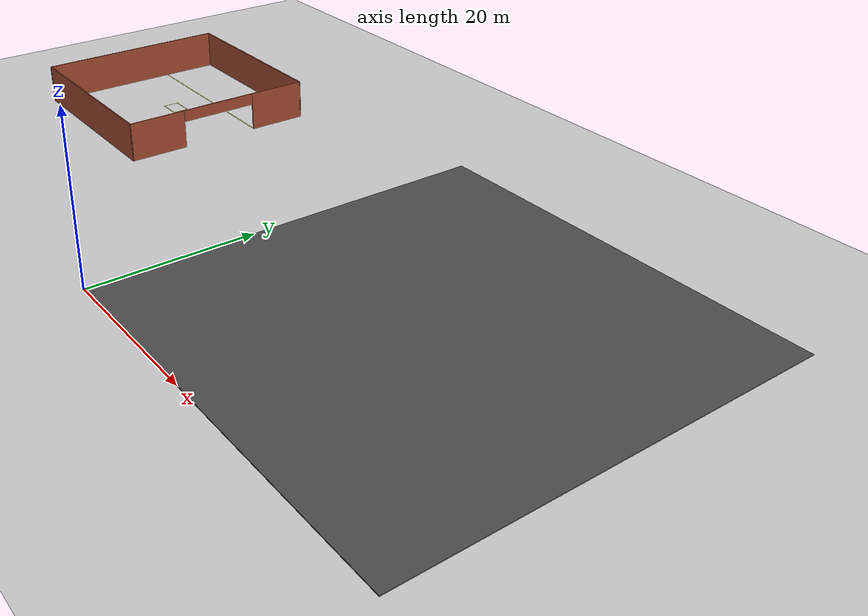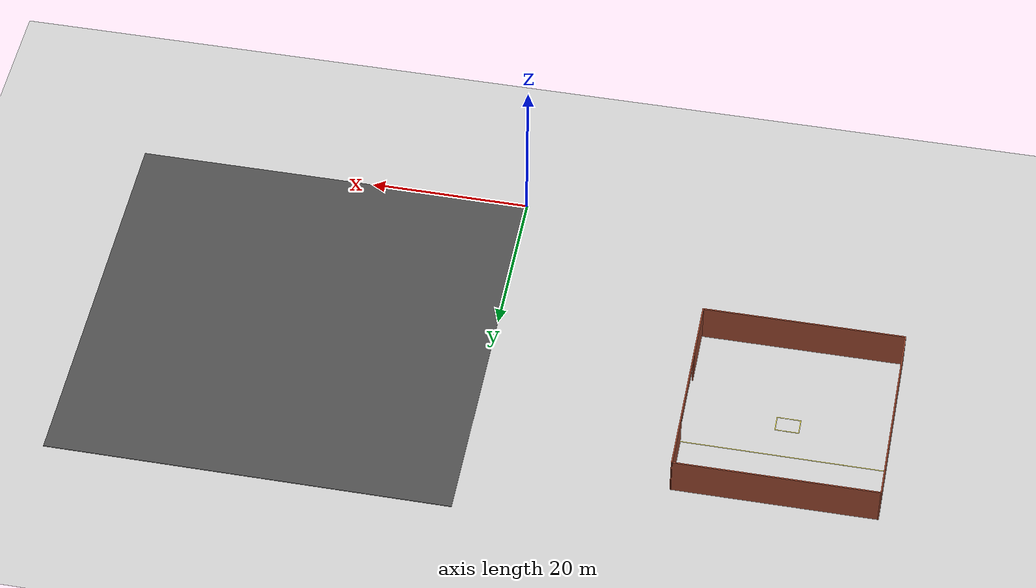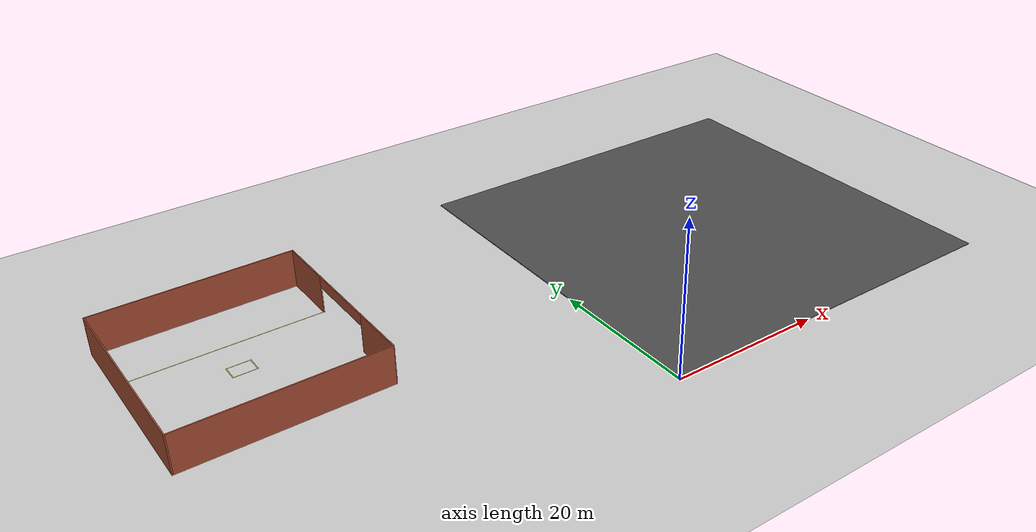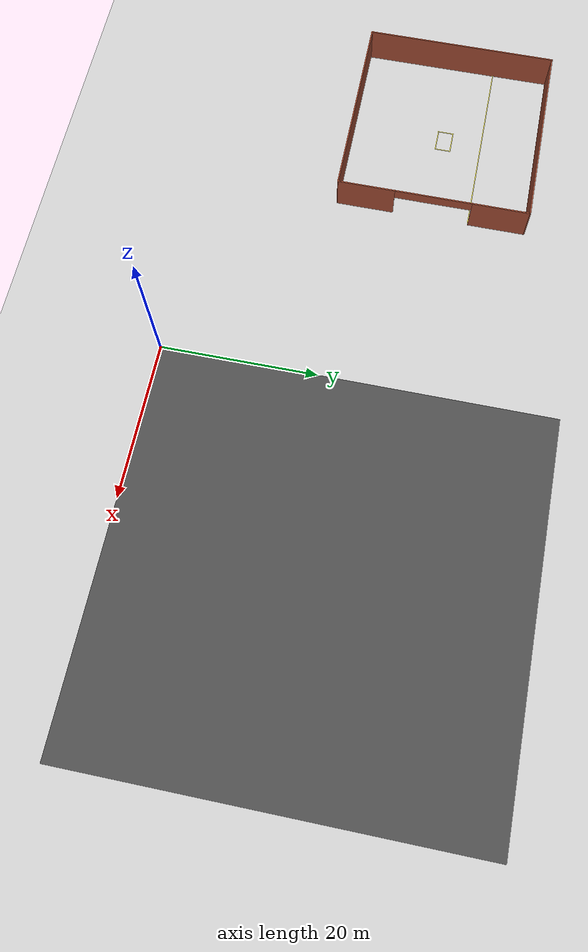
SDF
<sdf version="1.7">
 <world name="default">
  <model name="ground_plane">
   <static>1</static>
   <link name="link">
    <collision name="collision">
     <geometry><plane><normal>0 0 1</normal><size>100 100</size></plane></geometry>
     <surface>
      <contact><collide_bitmask>65535</collide_bitmask></contact>
      <friction><ode><mu>100</mu><mu2>50</mu2></ode></friction>
     </surface>
    </collision>
    <visual name="visual">
     <cast_shadows>0</cast_shadows>
     <geometry><plane><normal>0 0 1</normal><size>100 100</size></plane></geometry>
     <material>
      <script><uri>file://media/materials/scripts/gazebo.material</uri><name>Gazebo/Grey</name></script>
     </material>
    </visual>
   </link>
  </model>
  <model name="asphalt_plane">
   <link name="link">
    <inertial>
     <mass>1</mass>
     <inertia><ixx>1</ixx><ixy>0</ixy><ixz>0</ixz><iyy>1</iyy><iyz>0</iyz><izz>1</izz></inertia>
    </inertial>
    <visual name="visual">
     <cast_shadows>0</cast_shadows>
     <geometry><box><size>50 50 0.1</size></box></geometry>
     <material>
      <script>
       <uri>model://asphalt_plane/materials/scripts</uri>
       <uri>model://asphalt_plane/materials/textures</uri>
       <name>vrc/asphalt</name>
      </script>
      <shader type="pixel"><normal_map>__default__</normal_map></shader>
      <ambient>0.5 0.5 0.5 1</ambient>
      <diffuse>0.5 0.5 0.5 1</diffuse>
      <specular>0.2 0.2 0.2 1</specular>
      <emissive>0 0 0 1</emissive>
     </material>
    </visual>
    <collision name="collision">
     <geometry><box><size>50 50 0.1</size></box></geometry>
     <surface>
      <friction>
       <ode><mu>1</mu><mu2>1</mu2><fdir1>0 0 0</fdir1><slip1>0</slip1><slip2>0</slip2></ode>
       <torsional>
        <coefficient>1</coefficient>
        <patch_radius>0</patch_radius>
        <surface_radius>0</surface_radius>
        <use_patch_radius>1</use_patch_radius>
        <ode><slip>0</slip></ode>
       </torsional>
      </friction>
      <bounce><restitution_coefficient>0</restitution_coefficient><threshold>1e+06</threshold></bounce>
      <contact>
       <collide_without_contact>0</collide_without_contact>
       <collide_without_contact_bitmask>1</collide_without_contact_bitmask>
       <collide_bitmask>1</collide_bitmask>
       <ode>
        <soft_cfm>0</soft_cfm>
        <soft_erp>0.2</soft_erp>
        <kp>1e+13</kp>
        <kd>1</kd>
        <max_vel>0.01</max_vel>
        <min_depth>0</min_depth>
       </ode>
       <bullet>
        <split_impulse>1</split_impulse>
        <split_impulse_penetration_threshold>-0.01</split_impulse_penetration_threshold>
        <soft_cfm>0</soft_cfm>
        <soft_erp>0.2</soft_erp>
        <kp>1e+13</kp>
        <kd>1</kd>
       </bullet>
      </contact>
     </surface>
    </collision>
   </link>
   <static>1</static>
   <pose>25 25 0 0 -0 0</pose>
  </model>
  <model name="galpao_0">
   <link name="Wall_1">
    <pose>0 12.4246 0 0 -0 0.002696</pose>
    <visual name="Wall_1_Visual">
     <pose>0 0 2.5 0 -0 0</pose>
     <geometry><box><size>25 0.15 5</size></box></geometry>
     <material>
      <script><uri>file://media/materials/scripts/gazebo.material</uri><name>Gazebo/Bricks</name></script>
      <ambient>1 1 1 1</ambient>
      <shader type="pixel"/>
     </material>
     <meta><layer>0</layer></meta>
    </visual>
    <collision name="Wall_1_Collision">
     <pose>0 0 2.5 0 -0 0</pose>
     <geometry><box><size>25 0.15 5</size></box></geometry>
     <surface>
      <friction>
       <ode><mu>1</mu><mu2>1</mu2><fdir1>0 0 0</fdir1><slip1>0</slip1><slip2>0</slip2></ode>
       <torsional>
        <coefficient>1</coefficient>
        <patch_radius>0</patch_radius>
        <surface_radius>0</surface_radius>
        <use_patch_radius>1</use_patch_radius>
        <ode><slip>0</slip></ode>
       </torsional>
      </friction>
      <bounce><restitution_coefficient>0</restitution_coefficient><threshold>1e+06</threshold></bounce>
      <contact>
       <collide_without_contact>0</collide_without_contact>
       <collide_without_contact_bitmask>1</collide_without_contact_bitmask>
       <collide_bitmask>1</collide_bitmask>
       <ode>
        <soft_cfm>0</soft_cfm>
        <soft_erp>0.2</soft_erp>
        <kp>1e+13</kp>
        <kd>1</kd>
        <max_vel>0.01</max_vel>
        <min_depth>0</min_depth>
       </ode>
       <bullet>
        <split_impulse>1</split_impulse>
        <split_impulse_penetration_threshold>-0.01</split_impulse_penetration_threshold>
        <soft_cfm>0</soft_cfm>
        <soft_erp>0.2</soft_erp>
        <kp>1e+13</kp>
        <kd>1</kd>
       </bullet>
      </contact>
     </surface>
    </collision>
   </link>
   <link name="Wall_2">
    <pose>12.425 0.033073 0 0 0 -1.5708</pose>
    <inertial>
     <mass>1</mass>
     <inertia><ixx>1</ixx><ixy>0</ixy><ixz>0</ixz><iyy>1</iyy><iyz>0</iyz><izz>1</izz></inertia>
    </inertial>
    <visual name="Wall_2_Visual_0">
     <pose>-8.75 0 2.5 0 -0 0</pose>
     <geometry><box><size>7.5 0.15 5</size></box></geometry>
     <material>
      <script><uri>file://media/materials/scripts/gazebo.material</uri><name>Gazebo/Bricks</name></script>
      <ambient>1 1 1 1</ambient>
      <shader type="pixel"><normal_map>__default__</normal_map></shader>
      <diffuse>1 1 1 1</diffuse>
      <specular>0.2 0.2 0.2 1</specular>
      <emissive>0 0 0 1</emissive>
     </material>
     <meta><layer>0</layer></meta>
    </visual>
    <visual name="Wall_2_Visual_1">
     <pose>8.75 0 2.5 0 -0 0</pose>
     <geometry><box><size>7.5 0.15 5</size></box></geometry>
     <material>
      <script><uri>file://media/materials/scripts/gazebo.material</uri><name>Gazebo/Bricks</name></script>
      <ambient>1 1 1 1</ambient>
      <shader type="pixel"><normal_map>__default__</normal_map></shader>
      <diffuse>1 1 1 1</diffuse>
      <specular>0.2 0.2 0.2 1</specular>
      <emissive>0 0 0 1</emissive>
     </material>
     <meta><layer>0</layer></meta>
    </visual>
    <visual name="Wall_2_Visual_2">
     <pose>0 0 4.25 0 -0 0</pose>
     <geometry><box><size>10 0.15 1.5</size></box></geometry>
     <material>
      <script><uri>file://media/materials/scripts/gazebo.material</uri><name>Gazebo/Bricks</name></script>
      <ambient>1 1 1 1</ambient>
      <shader type="pixel"><normal_map>__default__</normal_map></shader>
      <diffuse>1 1 1 1</diffuse>
      <specular>0.2 0.2 0.2 1</specular>
      <emissive>0 0 0 1</emissive>
     </material>
     <meta><layer>0</layer></meta>
    </visual>
    <collision name="Wall_2_Collision_0">
     <pose>-8.75 0 2.5 0 -0 0</pose>
     <geometry><box><size>7.5 0.15 5</size></box></geometry>
     <surface>
      <friction>
       <ode><mu>1</mu><mu2>1</mu2><fdir1>0 0 0</fdir1><slip1>0</slip1><slip2>0</slip2></ode>
       <torsional>
        <coefficient>1</coefficient>
        <patch_radius>0</patch_radius>
        <surface_radius>0</surface_radius>
        <use_patch_radius>1</use_patch_radius>
        <ode><slip>0</slip></ode>
       </torsional>
      </friction>
      <bounce><restitution_coefficient>0</restitution_coefficient><threshold>1e+06</threshold></bounce>
      <contact>
       <collide_without_contact>0</collide_without_contact>
       <collide_without_contact_bitmask>1</collide_without_contact_bitmask>
       <collide_bitmask>1</collide_bitmask>
       <ode>
        <soft_cfm>0</soft_cfm>
        <soft_erp>0.2</soft_erp>
        <kp>1e+13</kp>
        <kd>1</kd>
        <max_vel>0.01</max_vel>
        <min_depth>0</min_depth>
       </ode>
       <bullet>
        <split_impulse>1</split_impulse>
        <split_impulse_penetration_threshold>-0.01</split_impulse_penetration_threshold>
        <soft_cfm>0</soft_cfm>
        <soft_erp>0.2</soft_erp>
        <kp>1e+13</kp>
        <kd>1</kd>
       </bullet>
      </contact>
     </surface>
    </collision>
    <collision name="Wall_2_Collision_1">
     <pose>8.75 0 2.5 0 -0 0</pose>
     <geometry><box><size>7.5 0.15 5</size></box></geometry>
     <surface>
      <friction>
       <ode><mu>1</mu><mu2>1</mu2><fdir1>0 0 0</fdir1><slip1>0</slip1><slip2>0</slip2></ode>
       <torsional>
        <coefficient>1</coefficient>
        <patch_radius>0</patch_radius>
        <surface_radius>0</surface_radius>
        <use_patch_radius>1</use_patch_radius>
        <ode><slip>0</slip></ode>
       </torsional>
      </friction>
      <bounce><restitution_coefficient>0</restitution_coefficient><threshold>1e+06</threshold></bounce>
      <contact>
       <collide_without_contact>0</collide_without_contact>
       <collide_without_contact_bitmask>1</collide_without_contact_bitmask>
       <collide_bitmask>1</collide_bitmask>
       <ode>
        <soft_cfm>0</soft_cfm>
        <soft_erp>0.2</soft_erp>
        <kp>1e+13</kp>
        <kd>1</kd>
        <max_vel>0.01</max_vel>
        <min_depth>0</min_depth>
       </ode>
       <bullet>
        <split_impulse>1</split_impulse>
        <split_impulse_penetration_threshold>-0.01</split_impulse_penetration_threshold>
        <soft_cfm>0</soft_cfm>
        <soft_erp>0.2</soft_erp>
        <kp>1e+13</kp>
        <kd>1</kd>
       </bullet>
      </contact>
     </surface>
    </collision>
    <collision name="Wall_2_Collision_2">
     <pose>0 0 4.25 0 -0 0</pose>
     <geometry><box><size>10 0.15 1.5</size></box></geometry>
     <surface>
      <friction>
       <ode><mu>1</mu><mu2>1</mu2><fdir1>0 0 0</fdir1><slip1>0</slip1><slip2>0</slip2></ode>
       <torsional>
        <coefficient>1</coefficient>
        <patch_radius>0</patch_radius>
        <surface_radius>0</surface_radius>
        <use_patch_radius>1</use_patch_radius>
        <ode><slip>0</slip></ode>
       </torsional>
      </friction>
      <bounce><restitution_coefficient>0</restitution_coefficient><threshold>1e+06</threshold></bounce>
      <contact>
       <collide_without_contact>0</collide_without_contact>
       <collide_without_contact_bitmask>1</collide_without_contact_bitmask>
       <collide_bitmask>1</collide_bitmask>
       <ode>
        <soft_cfm>0</soft_cfm>
        <soft_erp>0.2</soft_erp>
        <kp>1e+13</kp>
        <kd>1</kd>
        <max_vel>0.01</max_vel>
        <min_depth>0</min_depth>
       </ode>
       <bullet>
        <split_impulse>1</split_impulse>
        <split_impulse_penetration_threshold>-0.01</split_impulse_penetration_threshold>
        <soft_cfm>0</soft_cfm>
        <soft_erp>0.2</soft_erp>
        <kp>1e+13</kp>
        <kd>1</kd>
       </bullet>
      </contact>
     </surface>
    </collision>
   </link>
   <link name="Wall_3">
    <pose>-12.425 -0.033427 0 0 0 -1.5708</pose>
    <visual name="Wall_3_Visual">
     <pose>0 0 2.5 0 -0 0</pose>
     <geometry><box><size>24.9997 0.15 5</size></box></geometry>
     <material>
      <script><uri>file://media/materials/scripts/gazebo.material</uri><name>Gazebo/Bricks</name></script>
      <ambient>1 1 1 1</ambient>
      <shader type="pixel"/>
     </material>
     <meta><layer>0</layer></meta>
    </visual>
    <collision name="Wall_3_Collision">
     <pose>0 0 2.5 0 -0 0</pose>
     <geometry><box><size>24.9997 0.15 5</size></box></geometry>
     <surface>
      <friction>
       <ode><mu>1</mu><mu2>1</mu2><fdir1>0 0 0</fdir1><slip1>0</slip1><slip2>0</slip2></ode>
       <torsional>
        <coefficient>1</coefficient>
        <patch_radius>0</patch_radius>
        <surface_radius>0</surface_radius>
        <use_patch_radius>1</use_patch_radius>
        <ode><slip>0</slip></ode>
       </torsional>
      </friction>
      <bounce><restitution_coefficient>0</restitution_coefficient><threshold>1e+06</threshold></bounce>
      <contact>
       <collide_without_contact>0</collide_without_contact>
       <collide_without_contact_bitmask>1</collide_without_contact_bitmask>
       <collide_bitmask>1</collide_bitmask>
       <ode>
        <soft_cfm>0</soft_cfm>
        <soft_erp>0.2</soft_erp>
        <kp>1e+13</kp>
        <kd>1</kd>
        <max_vel>0.01</max_vel>
        <min_depth>0</min_depth>
       </ode>
       <bullet>
        <split_impulse>1</split_impulse>
        <split_impulse_penetration_threshold>-0.01</split_impulse_penetration_threshold>
        <soft_cfm>0</soft_cfm>
        <soft_erp>0.2</soft_erp>
        <kp>1e+13</kp>
        <kd>1</kd>
       </bullet>
      </contact>
     </surface>
    </collision>
   </link>
   <link name="Wall_4">
    <pose>0 -12.4249 0 0 -0 0.002656</pose>
    <visual name="Wall_4_Visual">
     <pose>0 0 2.5 0 -0 0</pose>
     <geometry><box><size>25 0.15 5</size></box></geometry>
     <material>
      <script><uri>file://media/materials/scripts/gazebo.material</uri><name>Gazebo/Bricks</name></script>
      <ambient>1 1 1 1</ambient>
      <shader type="pixel"/>
     </material>
     <meta><layer>0</layer></meta>
    </visual>
    <collision name="Wall_4_Collision">
     <pose>0 0 2.5 0 -0 0</pose>
     <geometry><box><size>25 0.15 5</size></box></geometry>
     <surface>
      <friction>
       <ode><mu>1</mu><mu2>1</mu2><fdir1>0 0 0</fdir1><slip1>0</slip1><slip2>0</slip2></ode>
       <torsional>
        <coefficient>1</coefficient>
        <patch_radius>0</patch_radius>
        <surface_radius>0</surface_radius>
        <use_patch_radius>1</use_patch_radius>
        <ode><slip>0</slip></ode>
       </torsional>
      </friction>
      <bounce><restitution_coefficient>0</restitution_coefficient><threshold>1e+06</threshold></bounce>
      <contact>
       <collide_without_contact>0</collide_without_contact>
       <collide_without_contact_bitmask>1</collide_without_contact_bitmask>
       <collide_bitmask>1</collide_bitmask>
       <ode>
        <soft_cfm>0</soft_cfm>
        <soft_erp>0.2</soft_erp>
        <kp>1e+13</kp>
        <kd>1</kd>
        <max_vel>0.01</max_vel>
        <min_depth>0</min_depth>
       </ode>
       <bullet>
        <split_impulse>1</split_impulse>
        <split_impulse_penetration_threshold>-0.01</split_impulse_penetration_threshold>
        <soft_cfm>0</soft_cfm>
        <soft_erp>0.2</soft_erp>
        <kp>1e+13</kp>
        <kd>1</kd>
       </bullet>
      </contact>
     </surface>
    </collision>
   </link>
   <static>1</static>
   <pose>-37.5 30 0 0 -0 0</pose>
  </model>
  <model name="line_marking_clone_clone">
   <link name="link_0_clone">
    <inertial>
     <mass>1</mass>
     <inertia>
      <ixx>0.166667</ixx>
      <ixy>0</ixy>
      <ixz>0</ixz>
      <iyy>0.166667</iyy>
      <iyz>0</iyz>
      <izz>0.166667</izz>
     </inertia>
    </inertial>
    <visual name="visual">
     <geometry><box><size>24.7 0.1 0.001</size></box></geometry>
     <material>
      <lighting>1</lighting>
      <script><uri>file://media/materials/scripts/gazebo.material</uri><name>Gazebo/Grey</name></script>
      <shader type="pixel"><normal_map>__default__</normal_map></shader>
      <ambient>0.988 0.914 0.31 1</ambient>
      <diffuse>0.7 0.7 0.7 1</diffuse>
      <specular>0.01 0.01 0.01 1</specular>
      <emissive>0 0 0 1</emissive>
     </material>
    </visual>
    <collision name="collision">
     <geometry><box><size>24.7 0.1 0.001</size></box></geometry>
     <surface>
      <friction>
       <ode><mu>1</mu><mu2>1</mu2><fdir1>0 0 0</fdir1><slip1>0</slip1><slip2>0</slip2></ode>
       <torsional>
        <coefficient>1</coefficient>
        <patch_radius>0</patch_radius>
        <surface_radius>0</surface_radius>
        <use_patch_radius>1</use_patch_radius>
        <ode><slip>0</slip></ode>
       </torsional>
      </friction>
      <bounce><restitution_coefficient>0</restitution_coefficient><threshold>1e+06</threshold></bounce>
      <contact>
       <collide_without_contact>0</collide_without_contact>
       <collide_without_contact_bitmask>1</collide_without_contact_bitmask>
       <collide_bitmask>1</collide_bitmask>
       <ode>
        <soft_cfm>0</soft_cfm>
        <soft_erp>0.2</soft_erp>
        <kp>1e+13</kp>
        <kd>1</kd>
        <max_vel>0.01</max_vel>
        <min_depth>0</min_depth>
       </ode>
       <bullet>
        <split_impulse>1</split_impulse>
        <split_impulse_penetration_threshold>-0.01</split_impulse_penetration_threshold>
        <soft_cfm>0</soft_cfm>
        <soft_erp>0.2</soft_erp>
        <kp>1e+13</kp>
        <kd>1</kd>
       </bullet>
      </contact>
     </surface>
    </collision>
   </link>
   <static>1</static>
   <pose>-37.5 35 0.1 0 -0 0</pose>
  </model>
  <model name="agv_marking_big_clone_2">
   <link name="link_0">
    <inertial>
     <mass>1</mass>
     <inertia>
      <ixx>0.166667</ixx>
      <ixy>0</ixy>
      <ixz>0</ixz>
      <iyy>0.166667</iyy>
      <iyz>0</iyz>
      <izz>0.166667</izz>
     </inertia>
    </inertial>
    <pose>0 1 0 0 -0 0</pose>
    <visual name="visual">
     <geometry><box><size>3 0.1 0.001</size></box></geometry>
     <material>
      <lighting>1</lighting>
      <script><uri>file://media/materials/scripts/gazebo.material</uri><name>Gazebo/Grey</name></script>
      <shader type="pixel"><normal_map>__default__</normal_map></shader>
      <ambient>0.988 0.914 0.31 1</ambient>
      <diffuse>0.7 0.7 0.7 1</diffuse>
      <specular>0.01 0.01 0.01 1</specular>
      <emissive>0 0 0 1</emissive>
     </material>
    </visual>
    <collision name="collision">
     <geometry><box><size>3 0.1 0.001</size></box></geometry>
     <surface>
      <friction>
       <ode><mu>1</mu><mu2>1</mu2><fdir1>0 0 0</fdir1><slip1>0</slip1><slip2>0</slip2></ode>
       <torsional>
        <coefficient>1</coefficient>
        <patch_radius>0</patch_radius>
        <surface_radius>0</surface_radius>
        <use_patch_radius>1</use_patch_radius>
        <ode><slip>0</slip></ode>
       </torsional>
      </friction>
      <bounce><restitution_coefficient>0</restitution_coefficient><threshold>1e+06</threshold></bounce>
      <contact>
       <collide_without_contact>0</collide_without_contact>
       <collide_without_contact_bitmask>1</collide_without_contact_bitmask>
       <collide_bitmask>1</collide_bitmask>
       <ode>
        <soft_cfm>0</soft_cfm>
        <soft_erp>0.2</soft_erp>
        <kp>1e+13</kp>
        <kd>1</kd>
        <max_vel>0.01</max_vel>
        <min_depth>0</min_depth>
       </ode>
       <bullet>
        <split_impulse>1</split_impulse>
        <split_impulse_penetration_threshold>-0.01</split_impulse_penetration_threshold>
        <soft_cfm>0</soft_cfm>
        <soft_erp>0.2</soft_erp>
        <kp>1e+13</kp>
        <kd>1</kd>
       </bullet>
      </contact>
     </surface>
    </collision>
   </link>
   <link name="link_0_clone">
    <inertial>
     <mass>1</mass>
     <inertia>
      <ixx>0.166667</ixx>
      <ixy>0</ixy>
      <ixz>0</ixz>
      <iyy>0.166667</iyy>
      <iyz>0</iyz>
      <izz>0.166667</izz>
     </inertia>
    </inertial>
    <pose>0 -1 0 0 -0 0</pose>
    <visual name="visual">
     <geometry><box><size>3 0.1 0.001</size></box></geometry>
     <material>
      <lighting>1</lighting>
      <script><uri>file://media/materials/scripts/gazebo.material</uri><name>Gazebo/Grey</name></script>
      <shader type="pixel"><normal_map>__default__</normal_map></shader>
      <ambient>0.988 0.914 0.31 1</ambient>
      <diffuse>0.7 0.7 0.7 1</diffuse>
      <specular>0.01 0.01 0.01 1</specular>
      <emissive>0 0 0 1</emissive>
     </material>
    </visual>
    <collision name="collision">
     <geometry><box><size>3 0.1 0.001</size></box></geometry>
     <surface>
      <friction>
       <ode><mu>1</mu><mu2>1</mu2><fdir1>0 0 0</fdir1><slip1>0</slip1><slip2>0</slip2></ode>
       <torsional>
        <coefficient>1</coefficient>
        <patch_radius>0</patch_radius>
        <surface_radius>0</surface_radius>
        <use_patch_radius>1</use_patch_radius>
        <ode><slip>0</slip></ode>
       </torsional>
      </friction>
      <bounce><restitution_coefficient>0</restitution_coefficient><threshold>1e+06</threshold></bounce>
      <contact>
       <collide_without_contact>0</collide_without_contact>
       <collide_without_contact_bitmask>1</collide_without_contact_bitmask>
       <collide_bitmask>1</collide_bitmask>
       <ode>
        <soft_cfm>0</soft_cfm>
        <soft_erp>0.2</soft_erp>
        <kp>1e+13</kp>
        <kd>1</kd>
        <max_vel>0.01</max_vel>
        <min_depth>0</min_depth>
       </ode>
       <bullet>
        <split_impulse>1</split_impulse>
        <split_impulse_penetration_threshold>-0.01</split_impulse_penetration_threshold>
        <soft_cfm>0</soft_cfm>
        <soft_erp>0.2</soft_erp>
        <kp>1e+13</kp>
        <kd>1</kd>
       </bullet>
      </contact>
     </surface>
    </collision>
   </link>
   <link name="link_1">
    <inertial>
     <mass>1</mass>
     <inertia>
      <ixx>0.166667</ixx>
      <ixy>0</ixy>
      <ixz>0</ixz>
      <iyy>0.166667</iyy>
      <iyz>0</iyz>
      <izz>0.166667</izz>
     </inertia>
    </inertial>
    <pose>-1.45 0 0 0 -0 0</pose>
    <visual name="visual">
     <geometry><box><size>0.1 1.9 0.001</size></box></geometry>
     <material>
      <lighting>1</lighting>
      <script><uri>file://media/materials/scripts/gazebo.material</uri><name>Gazebo/Grey</name></script>
      <shader type="pixel"><normal_map>__default__</normal_map></shader>
      <ambient>0.988 0.914 0.31 1</ambient>
      <diffuse>0.7 0.7 0.7 1</diffuse>
      <specular>0.01 0.01 0.01 1</specular>
      <emissive>0 0 0 1</emissive>
     </material>
    </visual>
    <collision name="collision">
     <geometry><box><size>0.1 1.9 0.001</size></box></geometry>
     <surface>
      <friction>
       <ode><mu>1</mu><mu2>1</mu2><fdir1>0 0 0</fdir1><slip1>0</slip1><slip2>0</slip2></ode>
       <torsional>
        <coefficient>1</coefficient>
        <patch_radius>0</patch_radius>
        <surface_radius>0</surface_radius>
        <use_patch_radius>1</use_patch_radius>
        <ode><slip>0</slip></ode>
       </torsional>
      </friction>
      <bounce><restitution_coefficient>0</restitution_coefficient><threshold>1e+06</threshold></bounce>
      <contact>
       <collide_without_contact>0</collide_without_contact>
       <collide_without_contact_bitmask>1</collide_without_contact_bitmask>
       <collide_bitmask>1</collide_bitmask>
       <ode>
        <soft_cfm>0</soft_cfm>
        <soft_erp>0.2</soft_erp>
        <kp>1e+13</kp>
        <kd>1</kd>
        <max_vel>0.01</max_vel>
        <min_depth>0</min_depth>
       </ode>
       <bullet>
        <split_impulse>1</split_impulse>
        <split_impulse_penetration_threshold>-0.01</split_impulse_penetration_threshold>
        <soft_cfm>0</soft_cfm>
        <soft_erp>0.2</soft_erp>
        <kp>1e+13</kp>
        <kd>1</kd>
       </bullet>
      </contact>
     </surface>
    </collision>
   </link>
   <link name="link_1_clone">
    <inertial>
     <mass>1</mass>
     <inertia>
      <ixx>0.166667</ixx>
      <ixy>0</ixy>
      <ixz>0</ixz>
      <iyy>0.166667</iyy>
      <iyz>0</iyz>
      <izz>0.166667</izz>
     </inertia>
    </inertial>
    <pose>1.45 0 0 0 -0 0</pose>
    <visual name="visual">
     <geometry><box><size>0.1 1.9 0.001</size></box></geometry>
     <material>
      <lighting>1</lighting>
      <script><uri>file://media/materials/scripts/gazebo.material</uri><name>Gazebo/Grey</name></script>
      <shader type="pixel"><normal_map>__default__</normal_map></shader>
      <ambient>0.988 0.914 0.31 1</ambient>
      <diffuse>0.7 0.7 0.7 1</diffuse>
      <specular>0.01 0.01 0.01 1</specular>
      <emissive>0 0 0 1</emissive>
     </material>
    </visual>
    <collision name="collision">
     <geometry><box><size>0.1 1.9 0.001</size></box></geometry>
     <surface>
      <friction>
       <ode><mu>1</mu><mu2>1</mu2><fdir1>0 0 0</fdir1><slip1>0</slip1><slip2>0</slip2></ode>
       <torsional>
        <coefficient>1</coefficient>
        <patch_radius>0</patch_radius>
        <surface_radius>0</surface_radius>
        <use_patch_radius>1</use_patch_radius>
        <ode><slip>0</slip></ode>
       </torsional>
      </friction>
      <bounce><restitution_coefficient>0</restitution_coefficient><threshold>1e+06</threshold></bounce>
      <contact>
       <collide_without_contact>0</collide_without_contact>
       <collide_without_contact_bitmask>1</collide_without_contact_bitmask>
       <collide_bitmask>1</collide_bitmask>
       <ode>
        <soft_cfm>0</soft_cfm>
        <soft_erp>0.2</soft_erp>
        <kp>1e+13</kp>
        <kd>1</kd>
        <max_vel>0.01</max_vel>
        <min_depth>0</min_depth>
       </ode>
       <bullet>
        <split_impulse>1</split_impulse>
        <split_impulse_penetration_threshold>-0.01</split_impulse_penetration_threshold>
        <soft_cfm>0</soft_cfm>
        <soft_erp>0.2</soft_erp>
        <kp>1e+13</kp>
        <kd>1</kd>
       </bullet>
      </contact>
     </surface>
    </collision>
   </link>
   <static>1</static>
   <pose>-37.5 30 0.075 0 -0 0</pose>
  </model>
 </world>
</sdf>
